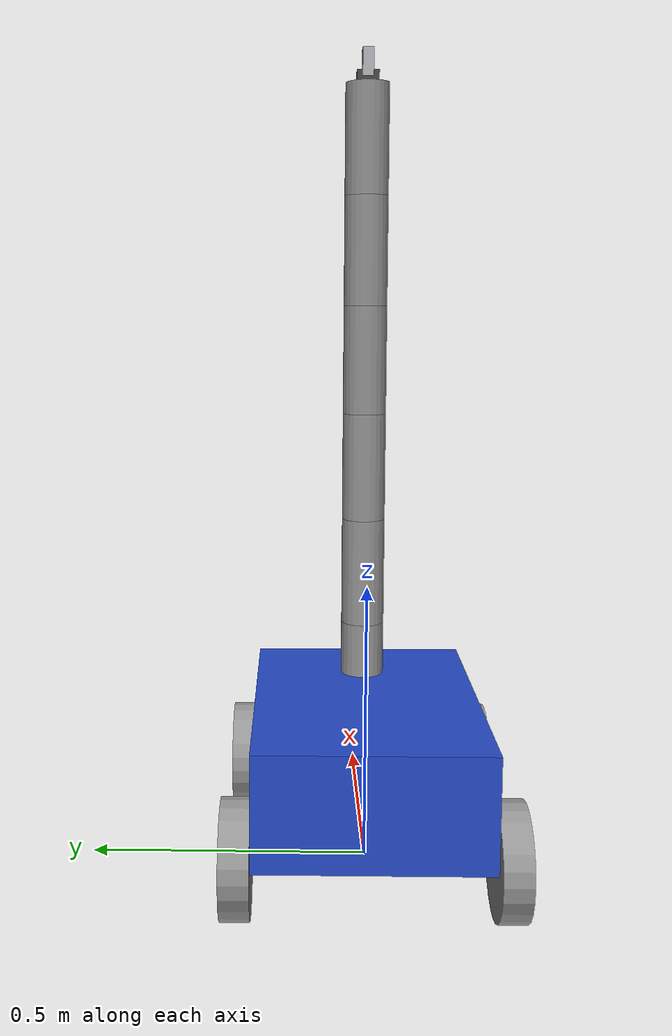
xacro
<?xml version="1.0"?>
<robot name="my_robot" xmlns:xacro="http://www.ros.org/wiki/xacro">

    <xacro:include filename="common_properties.xacro" />
    <xacro:include filename="mobile_base.xacro" />
    <xacro:include filename="mobile_base_gazebo.xacro" />
    <xacro:include filename="arm.xacro" />
    <xacro:include filename="arm1_gazebo.xacro" />

    <joint name="mobile_base_arm_joint" type="fixed">
        <parent link="base_link" />
        <child link="arm_base_link" />
        <origin xyz="${base_length / 4.0} 0 ${base_height}" rpy="0 0 0" />
    </joint>

</robot>

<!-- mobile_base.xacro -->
<robot xmlns:xacro="http://www.ros.org/wiki/xacro">

    <!-- Properties -->
    <xacro:property name="base_length" value="0.6" />
    <xacro:property name="base_width" value="0.4" />
    <xacro:property name="base_height" value="0.2" />
    <xacro:property name="wheel_radius" value="0.1" />
    <xacro:property name="wheel_length" value="0.05" />

    <!-- Base footprint -->
    <link name="base_footprint" />

    <!-- Base link -->
    <link name="base_link">
        <visual>
            <geometry>
                <box size="${base_length} ${base_width} ${base_height}" />
            </geometry>
            <origin xyz="0 0 ${base_height / 2.0}" rpy="0 0 0" />
            <material name="blue" />
        </visual>
        <collision>
            <geometry>
                <box size="${base_length} ${base_width} ${base_height}" />
            </geometry>
            <origin xyz="0 0 ${base_height / 2.0}" rpy="0 0 0" />
        </collision>
        <xacro:box_inertia m="5.0" l="${2*base_length}" w="${2*base_width}" h="${2*base_height}"
                           xyz="0 0 ${base_height / 2.0}" rpy="0 0 0" />
    </link>

    <!-- Macro for a wheel -->
    <xacro:macro name="wheel_link" params="prefix">
        <link name="${prefix}_wheel_link">
            <visual>
                <geometry>
                    <cylinder radius="${wheel_radius}" length="${wheel_length}" />
                </geometry>
                <origin xyz="0 0 0" rpy="${pi / 2.0} 0 0" />
                <material name="grey" />
            </visual>
            <collision>
                <geometry>
                    <cylinder radius="${wheel_radius}" length="${wheel_length}" />
                </geometry>
                <origin xyz="0 0 0" rpy="${pi / 2.0} 0 0" />
            </collision>
            <xacro:cylinder_inertia m="1.0" r="${2*wheel_radius}" h="${2*wheel_length}"
                                    xyz="0 0 0" rpy="${pi / 2.0} 0 0" />
        </link>
    </xacro:macro>

    <!-- 4 Wheels -->
    <xacro:wheel_link prefix="rear_right" />
    <xacro:wheel_link prefix="rear_left" />
    <xacro:wheel_link prefix="front_right" />
    <xacro:wheel_link prefix="front_left" />

    <!-- Joints -->
    <joint name="base_joint" type="fixed">
        <parent link="base_footprint" />
        <child link="base_link" />
        <origin xyz="0 0 ${wheel_radius}" rpy="0 0 0"/>
    </joint>

    <!-- Front Wheels (controlled directly) -->
    <joint name="base_front_right_wheel_joint" type="continuous">
        <parent link="base_link" />
        <child link="front_right_wheel_link" />
        <origin xyz="${base_length / 2.5} ${-(base_width + wheel_length) / 2.0} 0" rpy="0 0 0" />
        <axis xyz="0 1 0" />
    </joint>

    <joint name="base_front_left_wheel_joint" type="continuous">
        <parent link="base_link" />
        <child link="front_left_wheel_link" />
        <origin xyz="${base_length / 2.5} ${(base_width + wheel_length) / 2.0} 0" rpy="0 0 0" />
        <axis xyz="0 1 0" />
    </joint>

    <!-- Rear Wheels (MIMIC joints) -->
    <joint name="base_rear_right_wheel_joint" type="continuous">
        <parent link="base_link" />
        <child link="rear_right_wheel_link" />
        <origin xyz="${-base_length / 2.5} ${-(base_width + wheel_length) / 2.0} 0" rpy="0 0 0" />
        <axis xyz="0 1 0" />
        <mimic joint="base_front_right_wheel_joint" multiplier="1.0" />
    </joint>

    <joint name="base_rear_left_wheel_joint" type="continuous">
        <parent link="base_link" />
        <child link="rear_left_wheel_link" />
        <origin xyz="${-base_length / 2.5} ${(base_width + wheel_length) / 2.0} 0" rpy="0 0 0" />
        <axis xyz="0 1 0" />
        <mimic joint="base_front_left_wheel_joint" multiplier="1.0" />
    </joint>

</robot>

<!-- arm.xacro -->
<robot xmlns:xacro="http://www.ros.org/wiki/xacro" name="my_robot_description">

  <!-- Properties -->
  <xacro:property name="base_radius" value="0.05"/>
  <xacro:property name="base_height" value="0.05"/>
  <xacro:property name="joint_radius" value="0.04"/>
  <xacro:property name="joint_length" value="0.2"/>
  <xacro:property name="finger_length" value="0.05"/>
  <xacro:property name="finger_width" value="0.01"/>
  <xacro:property name="gripper_spacing" value="0.03"/>

  <!-- Arm Base Link -->
  <link name="arm_base_link">
    <visual>
      <geometry>
        <cylinder radius="${base_radius}" length="${base_height}"/>
      </geometry>
      <origin xyz="0 0 ${base_height / 2.0}" rpy="0 0 0"/>
      <material name="blue"/>
    </visual>
  </link>

  <!-- First joint connects to arm_base_link -->
  <link name="joint_0_link">
    <visual>
      <geometry>
        <cylinder radius="${joint_radius}" length="${joint_length}"/>
      </geometry>
      <origin xyz="0 0 ${joint_length / 2.0}" rpy="0 0 0"/>
      <material name="grey"/>
    </visual>
  </link>

  <joint name="joint_0_joint" type="revolute">
    <parent link="arm_base_link"/>
    <child link="joint_0_link"/>
    <origin xyz="0 0 ${base_height}" rpy="0 0 0"/>
    <axis xyz="0 0 1"/>
    <limit lower="-1.57" upper="1.57" effort="100" velocity="1.0"/>
    <dynamics friction="0.1" damping="0.1"/>
  </joint>

  <!-- Arm Segments -->
  <xacro:macro name="arm_segment" params="index">
    <link name="joint_${index}_link">
      <visual>
        <geometry>
          <cylinder radius="${joint_radius}" length="${joint_length}"/>
        </geometry>
        <origin xyz="0 0 ${joint_length / 2.0}" rpy="0 0 0"/>
        <material name="grey"/>
      </visual>
    </link>

    <joint name="joint_${index}_joint" type="revolute">
      <parent link="joint_${index - 1}_link"/>
      <child link="joint_${index}_link"/>
      <origin xyz="0 0 ${joint_length}" rpy="0 0 0"/>
      <axis xyz="0 1 0"/>
      <limit lower="-1.57" upper="1.57" effort="100" velocity="1.0"/>
      <dynamics friction="0.1" damping="0.1"/>
    </joint>
  </xacro:macro>

  <xacro:arm_segment index="1"/>
  <xacro:arm_segment index="2"/>
  <xacro:arm_segment index="3"/>
  <xacro:arm_segment index="4"/>
  <xacro:arm_segment index="5"/>

  <!-- Gripper Base Link -->
  <link name="gripper_base_link">
    <visual>
      <geometry>
        <box size="0.04 0.04 0.02"/>
      </geometry>
      <origin xyz="0 0 0.01" rpy="0 0 0"/>
      <material name="dark_grey"/>
    </visual>
  </link>

  <joint name="gripper_base_joint" type="fixed">
    <parent link="joint_5_link"/>
    <child link="gripper_base_link"/>
    <origin xyz="0 0 ${joint_length}" rpy="0 0 0"/>
  </joint>

  <!-- Left Finger -->
  <link name="left_finger_link">
    <visual>
      <geometry>
        <box size="${finger_width} 0.02 ${finger_length}"/>
      </geometry>
      <origin xyz="0 0 ${finger_length / 2.0}" rpy="0 0 0"/>
      <material name="silver"/>
    </visual>
  </link>

  <joint name="left_finger_joint" type="revolute">
    <parent link="gripper_base_link"/>
    <child link="left_finger_link"/>
    <origin xyz="${gripper_spacing / 2.0} 0 0.01" rpy="0 0 0"/>
    <axis xyz="1 0 0"/>
    <limit lower="0.0" upper="0.03" effort="10" velocity="1.0"/>
    <dynamics friction="0.01" damping="0.01"/>
  </joint>

  <!-- Right Finger -->
  <link name="right_finger_link">
    <visual>
      <geometry>
        <box size="${finger_width} 0.02 ${finger_length}"/>
      </geometry>
      <origin xyz="0 0 ${finger_length / 2.0}" rpy="0 0 0"/>
      <material name="silver"/>
    </visual>
  </link>

  <joint name="right_finger_joint" type="revolute">
    <parent link="gripper_base_link"/>
    <child link="right_finger_link"/>
    <origin xyz="-${gripper_spacing / 2.0} 0 0.01" rpy="0 0 0"/>
    <axis xyz="1 0 0"/>
    <limit lower="-0.03" upper="0.0" effort="10" velocity="1.0"/>
    <dynamics friction="0.01" damping="0.01"/>
  </joint>

</robot>
